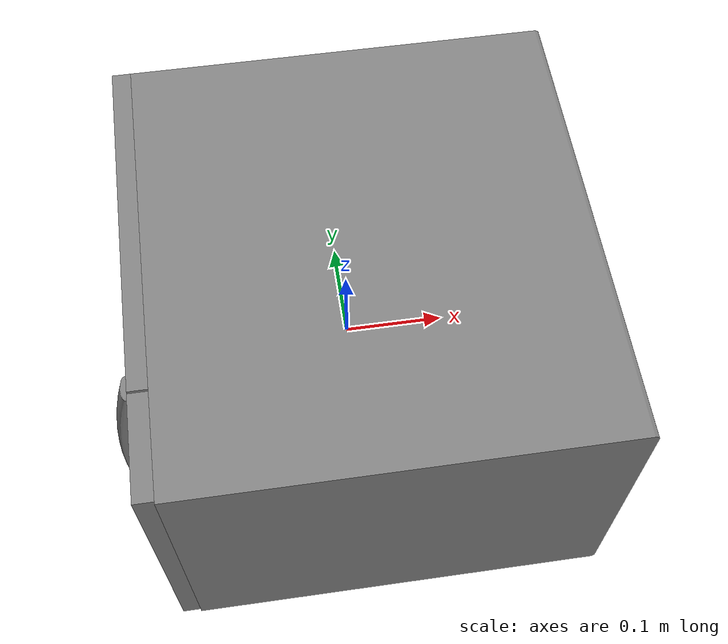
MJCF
<mujoco model="partnet_c3bb5f3c842a6c2d178e7d331e641179">
    <compiler angle="radian" />
    <size njmax="500" nconmax="100" />
    <asset>
        <mesh name="original-1.obj.convex" file="original-1.obj.convex.stl" scale="0.3562990018302636 0.3562990018302636 0.3562990018302636"/>
        <mesh name="original-8.obj.convex" file="original-8.obj.convex.stl" scale="0.3562990018302636 0.3562990018302636 0.3562990018302636"/>
        <mesh name="original-16.obj.convex" file="original-16.obj.convex.stl" scale="0.3562990018302636 0.3562990018302636 0.3562990018302636"/>
        <mesh name="original-9.obj.convex" file="original-9.obj.convex.stl" scale="0.3562990018302636 0.3562990018302636 0.3562990018302636"/>
        <mesh name="original-10.obj.convex" file="original-10.obj.convex.stl" scale="0.3562990018302636 0.3562990018302636 0.3562990018302636"/>
        <mesh name="original-11.obj.convex" file="original-11.obj.convex.stl" scale="0.3562990018302636 0.3562990018302636 0.3562990018302636"/>
        <mesh name="original-12.obj.convex" file="original-12.obj.convex.stl" scale="0.3562990018302636 0.3562990018302636 0.3562990018302636"/>
        <mesh name="original-13.obj.convex" file="original-13.obj.convex.stl" scale="0.3562990018302636 0.3562990018302636 0.3562990018302636"/>
        <mesh name="original-14.obj.convex" file="original-14.obj.convex.stl" scale="0.3562990018302636 0.3562990018302636 0.3562990018302636"/>
        <mesh name="original-15.obj.convex" file="original-15.obj.convex.stl" scale="0.3562990018302636 0.3562990018302636 0.3562990018302636"/>
        <mesh name="original-3.obj.convex" file="original-3.obj.convex.stl" scale="0.3562990018302636 0.3562990018302636 0.3562990018302636"/>
        <mesh name="original-6.obj.convex" file="original-6.obj.convex.stl" scale="0.3562990018302636 0.3562990018302636 0.3562990018302636"/>
        <mesh name="original-18.obj.convex" file="original-18.obj.convex.stl" scale="0.3562990018302636 0.3562990018302636 0.3562990018302636"/>
        <mesh name="original-20.obj.convex" file="original-20.obj.convex.stl" scale="0.3562990018302636 0.3562990018302636 0.3562990018302636"/>
        <mesh name="original-19.obj.convex" file="original-19.obj.convex.stl" scale="0.3562990018302636 0.3562990018302636 0.3562990018302636"/>
        <mesh name="original-4.obj.convex" file="original-4.obj.convex.stl" scale="0.3562990018302636 0.3562990018302636 0.3562990018302636"/>
        <mesh name="original-2.obj.convex" file="original-2.obj.convex.stl" scale="0.3562990018302636 0.3562990018302636 0.3562990018302636"/>
        <mesh name="original-5.obj.convex" file="original-5.obj.convex.stl" scale="0.3562990018302636 0.3562990018302636 0.3562990018302636"/>
    </asset>
    <worldbody>
        <body>
            <body name="object">
                <geom quat="0.5 0.5 -0.5 -0.5" type="mesh" mesh="original-4.obj.convex" contype="0" conaffinity="0" group="0" />
                <geom quat="0.5 0.5 -0.5 -0.5" type="mesh" mesh="original-2.obj.convex" contype="0" conaffinity="0" group="0" />
                <geom quat="0.5 0.5 -0.5 -0.5" type="mesh" mesh="original-5.obj.convex" contype="0" conaffinity="0" group="0" />
                <body name="link_0" pos="-0.195345842 0.229033458 -0.151760823" quat="0.5 0.5 -0.5 -0.5">
                    <inertial pos="0.184711449 0.158246211 0.005275669" quat="-0.000168234 0.701823 0.000179934 0.712351" mass="62.2208" diaginertia="1.20153 0.727059 0.479616" />
                    <joint name="joint_0" pos="0 0 0" axis="0 -1 0" limited="true" range="0 1.5708" />
                    <geom pos="0.229033458 0.151760823 -0.195345842" type="mesh" mesh="original-1.obj.convex" group="0" />
                    <geom pos="0.229033458 0.151760823 -0.195345842" type="mesh" mesh="original-8.obj.convex" group="0" />
                    <geom pos="0.229033458 0.151760823 -0.195345842" type="mesh" mesh="original-16.obj.convex" group="0" />
                    <geom pos="0.229033458 0.151760823 -0.195345842" type="mesh" mesh="original-9.obj.convex" group="0" />
                    <geom pos="0.229033458 0.151760823 -0.195345842" type="mesh" mesh="original-10.obj.convex" group="0" />
                    <geom pos="0.229033458 0.151760823 -0.195345842" type="mesh" mesh="original-11.obj.convex" group="0" />
                    <geom pos="0.229033458 0.151760823 -0.195345842" type="mesh" mesh="original-12.obj.convex" group="0" />
                    <geom pos="0.229033458 0.151760823 -0.195345842" type="mesh" mesh="original-13.obj.convex" group="0" />
                    <geom pos="0.229033458 0.151760823 -0.195345842" type="mesh" mesh="original-14.obj.convex" group="0" />
                    <geom pos="0.229033458 0.151760823 -0.195345842" type="mesh" mesh="original-15.obj.convex" group="0" />
                    <geom pos="0.229033458 0.151760823 -0.195345842" type="mesh" mesh="original-3.obj.convex" group="0" />
                    <geom pos="0.229033458 0.151760823 -0.195345842" type="mesh" mesh="original-6.obj.convex" group="0" />
                    <geom pos="0.229033458 0.151760823 -0.195345842" type="mesh" mesh="original-18.obj.convex" group="0" />
                    <geom pos="0.229033458 0.151760823 -0.195345842" type="mesh" mesh="original-20.obj.convex" group="0" />
                    <geom pos="0.229033458 0.151760823 -0.195345842" type="mesh" mesh="original-19.obj.convex" group="0" />
                </body>
            </body>
            <site name="bottom_site" pos="0 0 -0.1068897" rgba="0 0 0 0" size="0.005"/>
            <site name="top_site" pos="0 0 0.1068897" rgba="0 0 0 0" size="0.005"/>
            <site name="horizontal_radius_site" pos="0.1068897 0 0" rgba="0 0 0 0" size="0.1"/>
        </body>
    </worldbody>
</mujoco>
